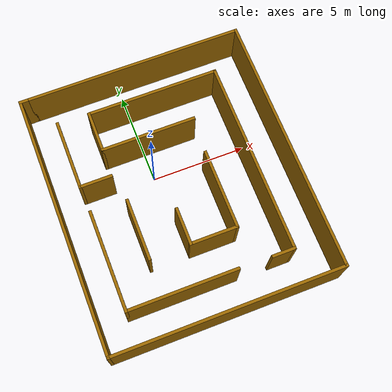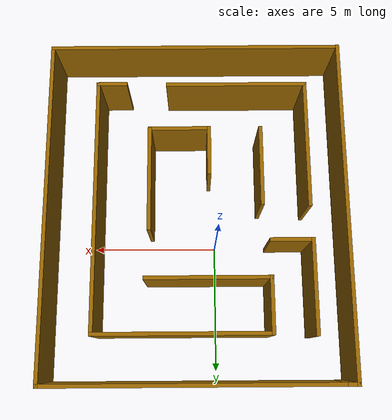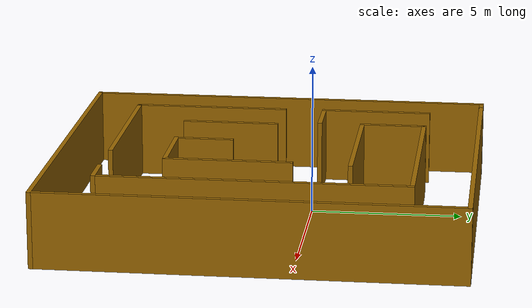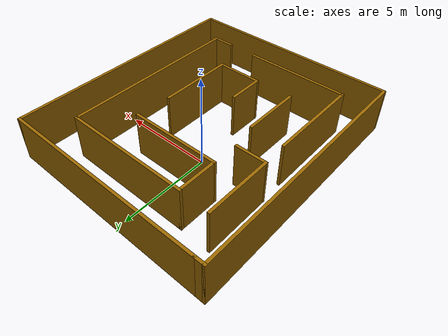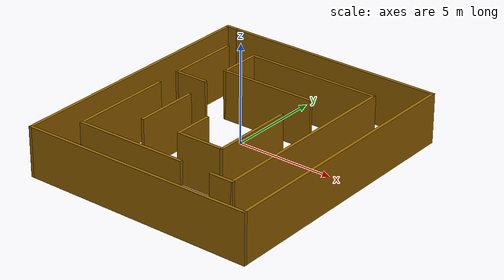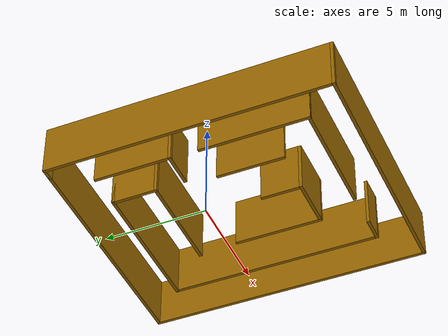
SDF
<?xml version='1.0'?>
<sdf version='1.6'>
  <model name='maze'>
    <pose frame=''>0.767549 -1.33561 0 0 -0 0</pose>
    <link name='Wall_11'>
      <collision name='Wall_11_Collision'>
        <geometry>
          <box>
            <size>2.25 0.15 2.5</size>
          </box>
        </geometry>
        <pose frame=''>0 0 1.25 0 -0 0</pose>
      </collision>
      <visual name='Wall_11_Visual'>
        <pose frame=''>0 0 1.25 0 -0 0</pose>
        <geometry>
          <box>
            <size>2.25 0.15 2.5</size>
          </box>
        </geometry>
        <material>
          <script>
            <uri>file://media/materials/scripts/gazebo.material</uri>
            <name>Gazebo/Grey</name>
          </script>
          <ambient>0.6 0.4 0 1</ambient>
        </material>
        <meta>
          <layer>0</layer>
        </meta>
      </visual>
      <pose frame=''>-2.86639 3.89002 0 0 -0 1.5708</pose>
    </link>
    <link name='Wall_12'>
      <collision name='Wall_12_Collision'>
        <geometry>
          <box>
            <size>7 0.15 2.5</size>
          </box>
        </geometry>
        <pose frame=''>0 0 1.25 0 -0 0</pose>
      </collision>
      <visual name='Wall_12_Visual'>
        <pose frame=''>0 0 1.25 0 -0 0</pose>
        <geometry>
          <box>
            <size>7 0.15 2.5</size>
          </box>
        </geometry>
        <material>
          <script>
            <uri>file://media/materials/scripts/gazebo.material</uri>
            <name>Gazebo/Grey</name>
          </script>
          <ambient>0.6 0.4 0 1</ambient>
        </material>
        <meta>
          <layer>0</layer>
        </meta>
      </visual>
      <pose frame=''>0.558606 4.94002 0 0 -0 0</pose>
    </link>
    <link name='Wall_13'>
      <collision name='Wall_13_Collision'>
        <geometry>
          <box>
            <size>10.25 0.15 2.5</size>
          </box>
        </geometry>
        <pose frame=''>0 0 1.25 0 -0 0</pose>
      </collision>
      <visual name='Wall_13_Visual'>
        <pose frame=''>0 0 1.25 0 -0 0</pose>
        <geometry>
          <box>
            <size>10.25 0.15 2.5</size>
          </box>
        </geometry>
        <material>
          <script>
            <uri>file://media/materials/scripts/gazebo.material</uri>
            <name>Gazebo/Grey</name>
          </script>
          <ambient>0.6 0.4 0 1</ambient>
        </material>
        <meta>
          <layer>0</layer>
        </meta>
      </visual>
      <pose frame=''>3.98361 -0.109983 0 0 -0 -1.5708</pose>
    </link>
    <link name='Wall_14'>
      <collision name='Wall_14_Collision'>
        <geometry>
          <box>
            <size>1.25 0.15 2.5</size>
          </box>
        </geometry>
        <pose frame=''>0 0 1.25 0 -0 0</pose>
      </collision>
      <visual name='Wall_14_Visual'>
        <pose frame=''>0 0 1.25 0 -0 0</pose>
        <geometry>
          <box>
            <size>1.25 0.15 2.5</size>
          </box>
        </geometry>
        <material>
          <script>
            <uri>file://media/materials/scripts/gazebo.material</uri>
            <name>Gazebo/Grey</name>
          </script>
          <ambient>0.6 0.4 0 1</ambient>
        </material>
        <meta>
          <layer>0</layer>
        </meta>
      </visual>
      <pose frame=''>3.43361 -5.15998 0 0 -0 3.14159</pose>
    </link>
    <link name='Wall_16'>
      <collision name='Wall_16_Collision'>
        <geometry>
          <box>
            <size>1.75 0.15 2.5</size>
          </box>
        </geometry>
        <pose frame=''>0 0 1.25 0 -0 0</pose>
      </collision>
      <visual name='Wall_16_Visual'>
        <pose frame=''>0 0 1.25 0 -0 0</pose>
        <geometry>
          <box>
            <size>1.75 0.15 2.5</size>
          </box>
        </geometry>
        <material>
          <script>
            <uri>file://media/materials/scripts/gazebo.material</uri>
            <name>Gazebo/Grey</name>
          </script>
          <ambient>0.6 0.4 0 1</ambient>
        </material>
        <meta>
          <layer>0</layer>
        </meta>
      </visual>
      <pose frame=''>-3.72231 1.38609 0 0 -0 3.14159</pose>
    </link>
    <link name='Wall_17'>
      <collision name='Wall_17_Collision'>
        <geometry>
          <box>
            <size>3.75 0.15 2.5</size>
          </box>
        </geometry>
        <pose frame=''>0 0 1.25 0 -0 0</pose>
      </collision>
      <visual name='Wall_17_Visual'>
        <pose frame=''>0 0 1.25 0 -0 0</pose>
        <geometry>
          <box>
            <size>3.75 0.15 2.5</size>
          </box>
        </geometry>
        <material>
          <script>
            <uri>file://media/materials/scripts/gazebo.material</uri>
            <name>Gazebo/Grey</name>
          </script>
          <ambient>0.6 0.4 0 1</ambient>
        </material>
        <meta>
          <layer>0</layer>
        </meta>
      </visual>
      <pose frame=''>-4.52231 3.18608 0 0 -0 1.5708</pose>
    </link>
    <link name='Wall_19'>
      <collision name='Wall_19_Collision'>
        <geometry>
          <box>
            <size>5.25 0.15 2.5</size>
          </box>
        </geometry>
        <pose frame=''>0 0 1.25 0 -0 0</pose>
      </collision>
      <visual name='Wall_19_Visual'>
        <pose frame=''>0 0 1.25 0 -0 0</pose>
        <geometry>
          <box>
            <size>5.25 0.15 2.5</size>
          </box>
        </geometry>
        <material>
          <script>
            <uri>file://media/materials/scripts/gazebo.material</uri>
            <name>Gazebo/Grey</name>
          </script>
          <ambient>0.6 0.4 0 1</ambient>
        </material>
        <meta>
          <layer>0</layer>
        </meta>
      </visual>
      <pose frame=''>-4.47017 -2.57107 0 0 -0 -1.5708</pose>
    </link>
    <link name='Wall_20'>
      <collision name='Wall_20_Collision'>
        <geometry>
          <box>
            <size>5.75 0.15 2.5</size>
          </box>
        </geometry>
        <pose frame=''>0 0 1.25 0 -0 0</pose>
      </collision>
      <visual name='Wall_20_Visual'>
        <pose frame=''>0 0 1.25 0 -0 0</pose>
        <geometry>
          <box>
            <size>5.75 0.15 2.5</size>
          </box>
        </geometry>
        <material>
          <script>
            <uri>file://media/materials/scripts/gazebo.material</uri>
            <name>Gazebo/Grey</name>
          </script>
          <ambient>0.6 0.4 0 1</ambient>
        </material>
        <meta>
          <layer>0</layer>
        </meta>
      </visual>
      <pose frame=''>-1.67017 -5.12107 0 0 -0 0</pose>
    </link>
    <link name='Wall_22'>
      <collision name='Wall_22_Collision'>
        <geometry>
          <box>
            <size>11.5 0.15 2.5</size>
          </box>
        </geometry>
        <pose frame=''>0 0 1.25 0 -0 0</pose>
      </collision>
      <visual name='Wall_22_Visual'>
        <pose frame=''>0 0 1.25 0 -0 0</pose>
        <geometry>
          <box>
            <size>11.5 0.15 2.5</size>
          </box>
        </geometry>
        <material>
          <script>
            <uri>file://media/materials/scripts/gazebo.material</uri>
            <name>Gazebo/Grey</name>
          </script>
          <ambient>0.6 0.4 0 1</ambient>
        </material>
        <meta>
          <layer>0</layer>
        </meta>
      </visual>
      <pose frame=''>0.25 6.8 0 0 -0 0</pose>
    </link>
    <link name='Wall_23'>
      <collision name='Wall_23_Collision'>
        <geometry>
          <box>
            <size>13.75 0.15 2.5</size>
          </box>
        </geometry>
        <pose frame=''>0 0 1.25 0 -0 0</pose>
      </collision>
      <visual name='Wall_23_Visual'>
        <pose frame=''>0 0 1.25 0 -0 0</pose>
        <geometry>
          <box>
            <size>13.75 0.15 2.5</size>
          </box>
        </geometry>
        <material>
          <script>
            <uri>file://media/materials/scripts/gazebo.material</uri>
            <name>Gazebo/Grey</name>
          </script>
          <ambient>0.6 0.4 0 1</ambient>
        </material>
        <meta>
          <layer>0</layer>
        </meta>
      </visual>
      <pose frame=''>5.925 0 0 0 -0 -1.5708</pose>
    </link>
    <link name='Wall_24'>
      <collision name='Wall_24_Collision'>
        <geometry>
          <box>
            <size>12 0.15 2.5</size>
          </box>
        </geometry>
        <pose frame=''>0 0 1.25 0 -0 0</pose>
      </collision>
      <visual name='Wall_24_Visual'>
        <pose frame=''>0 0 1.25 0 -0 0</pose>
        <geometry>
          <box>
            <size>12 0.15 2.5</size>
          </box>
        </geometry>
        <material>
          <script>
            <uri>file://media/materials/scripts/gazebo.material</uri>
            <name>Gazebo/Grey</name>
          </script>
          <ambient>0.6 0.4 0 1</ambient>
        </material>
        <meta>
          <layer>0</layer>
        </meta>
      </visual>
      <pose frame=''>-0 -6.8 0 0 -0 3.14159</pose>
    </link>
    <link name='Wall_25'>
      <collision name='Wall_25_Collision'>
        <geometry>
          <box>
            <size>13.75 0.15 2.5</size>
          </box>
        </geometry>
        <pose frame=''>0 0 1.25 0 -0 0</pose>
      </collision>
      <visual name='Wall_25_Visual'>
        <pose frame=''>0 0 1.25 0 -0 0</pose>
        <geometry>
          <box>
            <size>13.75 0.15 2.5</size>
          </box>
        </geometry>
        <material>
          <script>
            <uri>file://media/materials/scripts/gazebo.material</uri>
            <name>Gazebo/Grey</name>
          </script>
          <ambient>0.6 0.4 0 1</ambient>
        </material>
        <meta>
          <layer>0</layer>
        </meta>
      </visual>
      <pose frame=''>-5.925 0 0 0 -0 1.5708</pose>
    </link>
    <link name='Wall_26'>
      <collision name='Wall_26_Collision'>
        <geometry>
          <box>
            <size>0.65 0.15 2.5</size>
          </box>
        </geometry>
        <pose frame=''>0 0 1.25 0 -0 0</pose>
      </collision>
      <visual name='Wall_26_Visual'>
        <pose frame=''>0 0 1.25 0 -0 0</pose>
        <geometry>
          <box>
            <size>0.65 0.15 2.5</size>
          </box>
        </geometry>
        <material>
          <script>
            <uri>file://media/materials/scripts/gazebo.material</uri>
            <name>Gazebo/Grey</name>
          </script>
          <ambient>0.6 0.4 0 1</ambient>
        </material>
        <meta>
          <layer>0</layer>
        </meta>
      </visual>
      <pose frame=''>-5.675 6.8 0 0 -0 0</pose>
    </link>
    <link name='Wall_28'>
      <collision name='Wall_28_Collision'>
        <geometry>
          <box>
            <size>2.5 0.15 2.5</size>
          </box>
        </geometry>
        <pose frame=''>0 0 1.25 0 -0 0</pose>
      </collision>
      <visual name='Wall_28_Visual'>
        <pose frame=''>0 0 1.25 0 -0 0</pose>
        <geometry>
          <box>
            <size>2.5 0.15 2.5</size>
          </box>
        </geometry>
        <material>
          <script>
            <uri>file://media/materials/scripts/gazebo.material</uri>
            <name>Gazebo/Grey</name>
          </script>
          <ambient>0.6 0.4 0 1</ambient>
        </material>
        <meta>
          <layer>0</layer>
        </meta>
      </visual>
      <pose frame=''>0.645924 -3.20551 0 0 -0 0</pose>
    </link>
    <link name='Wall_30'>
      <collision name='Wall_30_Collision'>
        <geometry>
          <box>
            <size>4.25 0.15 2.5</size>
          </box>
        </geometry>
        <pose frame=''>0 0 1.25 0 -0 0</pose>
      </collision>
      <visual name='Wall_30_Visual'>
        <pose frame=''>0 0 1.25 0 -0 0</pose>
        <geometry>
          <box>
            <size>4.25 0.15 2.5</size>
          </box>
        </geometry>
        <material>
          <script>
            <uri>file://media/materials/scripts/gazebo.material</uri>
            <name>Gazebo/Grey</name>
          </script>
          <ambient>0.6 0.4 0 1</ambient>
        </material>
        <meta>
          <layer>0</layer>
        </meta>
      </visual>
      <pose frame=''>1.85906 -1.15623 0 0 -0 1.5708</pose>
    </link>
    <link name='Wall_33'>
      <collision name='Wall_33_Collision'>
        <geometry>
          <box>
            <size>2 0.15 2.5</size>
          </box>
        </geometry>
        <pose frame=''>0 0 1.25 0 -0 0</pose>
      </collision>
      <visual name='Wall_33_Visual'>
        <pose frame=''>0 0 1.25 0 -0 0</pose>
        <geometry>
          <box>
            <size>2 0.15 2.5</size>
          </box>
        </geometry>
        <material>
          <script>
            <uri>file://media/materials/scripts/gazebo.material</uri>
            <name>Gazebo/Grey</name>
          </script>
          <ambient>0.6 0.4 0 1</ambient>
        </material>
        <meta>
          <layer>0</layer>
        </meta>
      </visual>
      <pose frame=''>-0.529076 -2.2805 0 0 -0 1.5708</pose>
    </link>
    <link name='Wall_35'>
      <collision name='Wall_35_Collision'>
        <geometry>
          <box>
            <size>5 0.15 2.5</size>
          </box>
        </geometry>
        <pose frame=''>0 0 1.25 0 -0 0</pose>
      </collision>
      <visual name='Wall_35_Visual'>
        <pose frame=''>0 0 1.25 0 -0 0</pose>
        <geometry>
          <box>
            <size>5 0.15 2.5</size>
          </box>
        </geometry>
        <material>
          <script>
            <uri>file://media/materials/scripts/gazebo.material</uri>
            <name>Gazebo/Grey</name>
          </script>
          <ambient>0.6 0.4 0 1</ambient>
        </material>
        <meta>
          <layer>0</layer>
        </meta>
      </visual>
      <pose frame=''>-0.441394 2.84002 0 0 -0 0</pose>
    </link>
    <link name='Wall_6'>
      <collision name='Wall_6_Collision'>
        <geometry>
          <box>
            <size>3.25 0.15 2.5</size>
          </box>
        </geometry>
        <pose frame=''>0 0 1.25 0 -0 0</pose>
      </collision>
      <visual name='Wall_6_Visual'>
        <pose frame=''>0 0 1.25 0 -0 0</pose>
        <geometry>
          <box>
            <size>3.25 0.15 2.5</size>
          </box>
        </geometry>
        <material>
          <script>
            <uri>file://media/materials/scripts/gazebo.material</uri>
            <name>Gazebo/Grey</name>
          </script>
          <ambient>0.6 0.4 0 1</ambient>
        </material>
        <meta>
          <layer>0</layer>
        </meta>
      </visual>
      <pose frame=''>-2.60755 -1.64439 0 0 -0 -1.5708</pose>
    </link>
    <static>1</static>
  </model>
</sdf>
